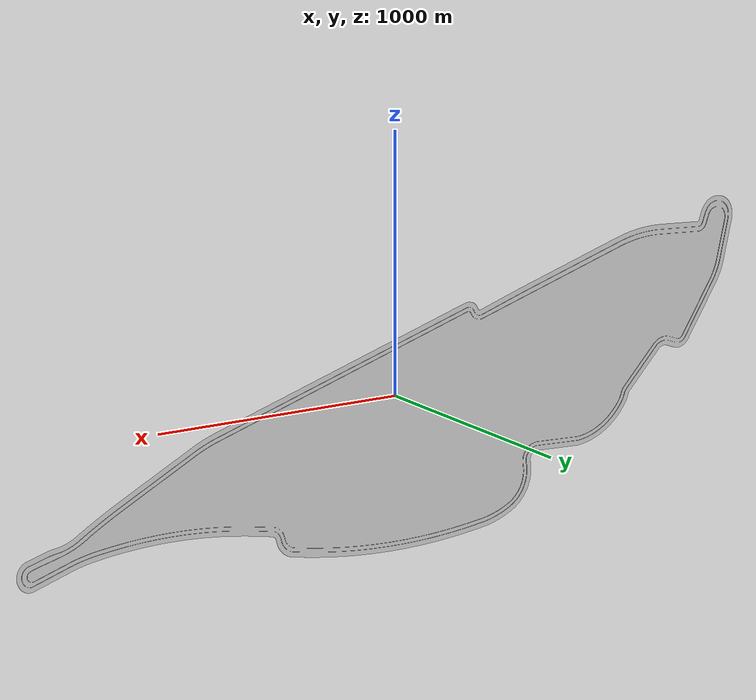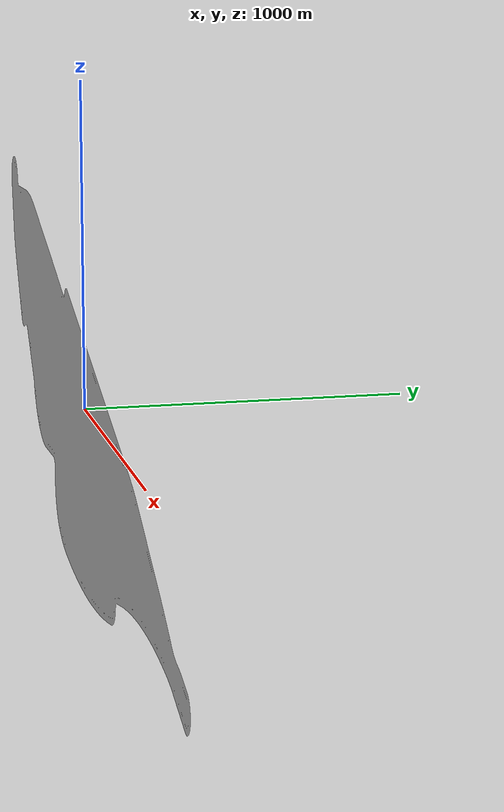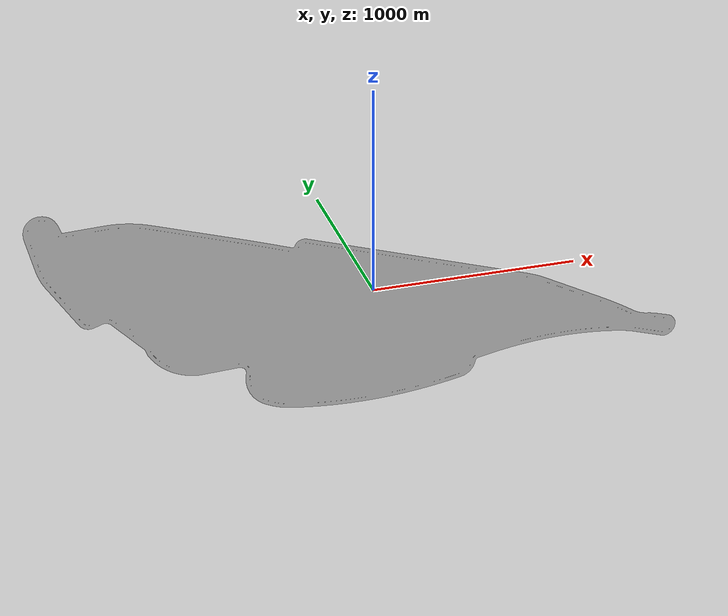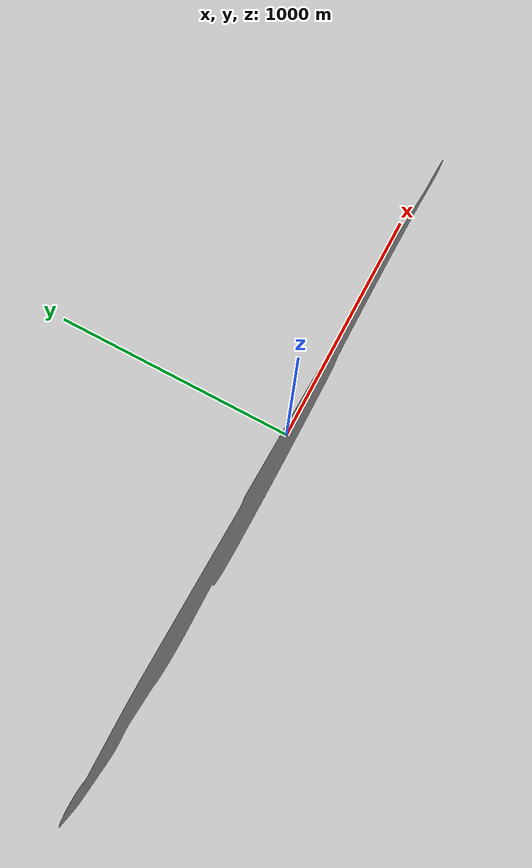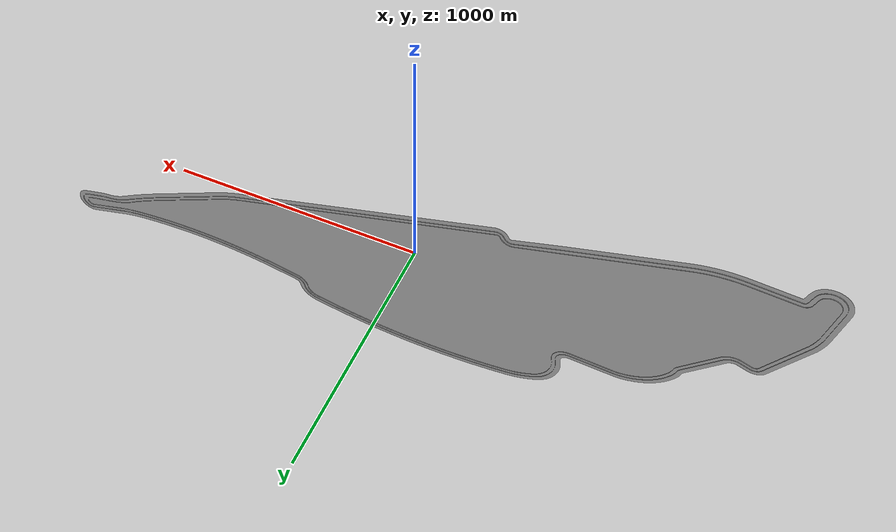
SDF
<?xml version='1.0'?>
<sdf version="1.4">
<model name="big_montreal_line">
  <static>true</static>
  <link name="big_montreal_line">
    <pose>0 0 0 0 0 0</pose>
    <collision name="collision">
      <geometry>
        <plane>
          <size> 3000 3000</size>
        </plane>
      </geometry>
    </collision>
    <visual name="visual">
      <geometry>
        <mesh>
          <uri>model://big_montreal_line/meshes/montreal.obj</uri>
          <scale>5 5 5</scale>
        </mesh>
      </geometry>
    </visual>
  </link>
  <link name="pared">
    <collision name="collision">
      <geometry>
        <mesh>
          <uri>model://big_montreal_line/meshes/montreal_pared.obj</uri>
          <scale>5 5 5</scale>
        </mesh>
      </geometry>
    </collision>
    <visual name="visual">
      <geometry>
        <mesh>
          <uri>model://big_montreal_line/meshes/montreal_pared.obj</uri>
          <scale>5 5 5</scale>
        </mesh>
      </geometry>
    </visual>
  </link>
</model>
</sdf>
